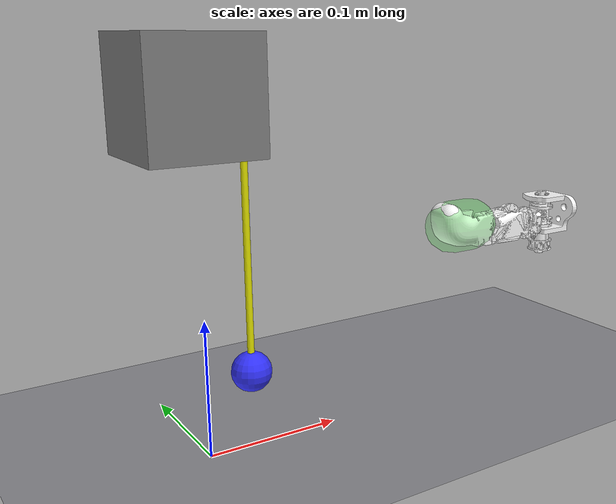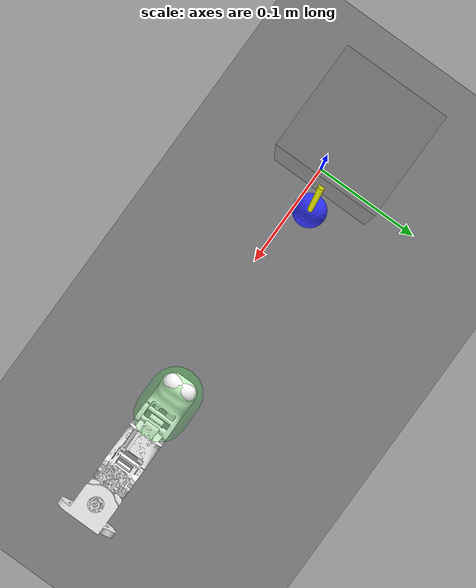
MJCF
<mujoco>
    <option gravity ="0 0 -9.81" timestep="0.001" viscosity="1.8e-5" density="1.204" integrator="implicit">
        <flag contact="enable"/>
    </option>

    <default>
        <geom solref="0.02 1" solimp="0.9 0.95 0.0051" condim="3" friction="0.8 0.005 0.0001"/>
    </default>

    <asset>
    <!--Finger assets-->
    <material name="base_mat"  rgba="1 1 1 1" emission="0.3"/>   <!-- red -->
    <material name="splay_mat" rgba="1 1 1 1" emission="0.3"/>   <!-- blue -->
    <material name="mcp_mat"   rgba="1 1 1 1" emission="0.3"/>   <!-- green -->
    <material name="pip_mat"   rgba="1 1 1 1" emission="0.3"/>
    <mesh name="base_link" content_type="model/stl" file="../meshes/base_link.STL"/>
    <mesh name="splay_link" content_type="model/stl" file="../meshes/splay_link.STL"/>
    <mesh name="mcp_link" content_type="model/stl" file="../meshes/mcp_link.STL"/>
    <mesh name="pip_link" content_type="model/stl" file="../meshes/pip_link.STL"/>
    <!--Ball pendulum asset-->
    <material name="rod_mat" rgba="0.3 0.3 0.3 1" emission="0.3"/>
    <material name="ball_mat" rgba="0.3 0.3 0.3 1" emission="0.3"/>
    </asset>

    <worldbody>
        <light diffuse=".5 .5 .5" pos="0 0 3" dir="0 0 -1" specular="0.3 0.3 0.3" directional="true"/>
        <geom name="floor" type="plane" size="1 1 0.1" rgba="0.533 0.533 0.55 0.5"/>

        <body name="base_link" pos="0.345 0.03 0.15"  euler="0 180 -90">
            <inertial pos="0 0 0" mass="0.1" diaginertia="1e-4 1e-4 1e-4"/>
            <geom type="mesh" material="base_mat" mesh="base_link"/>

            <body name="splay_link" pos="0.01504 0.018 0.016">
                <inertial pos="-3.6026e-05 0.0074618 0.0080911" quat="0.540632 -0.194088 0.25543 0.77769" mass="0.015542" diaginertia="1.41539e-06 1.4041e-06 1.2375e-06"/>
                <joint name="splay_joint" pos="0 0 0" axis="0 0 1" range="-0.35 0.35" damping="5" stiffness="12.5"/>
                <geom type="mesh" material="splay_mat" mesh="splay_link" contype="0" conaffinity="0"/>
                <geom name="splay_geom" type="capsule" size="0.0215 0.0080" pos="0 -0.01 0" euler="0 0 0" rgba="0 1 0 0.0"/>

                <body name="mcp_link" pos="0.00015675 0.029856 0">
                    <inertial pos="-4.0155e-05 0.019564 0.004554" quat="0.51097 0.473652 -0.492558 0.521488" mass="0.022212" diaginertia="3.60499e-06 2.80936e-06 2.37004e-06"/>
                    <joint name="mcp_joint" pos="0 0 0" axis="-1 0 0" range="-1.57 1.57" actuatorfrcrange="-10 10" damping="0.5" stiffness="0"/>
                    <geom type="mesh" material="mcp_mat" mesh="mcp_link" contype="0" conaffinity="0"/>
                    <geom name="mcp_geom" type="capsule" size="0.0215 0.0080" pos="0 0.010 0.005" euler="90 0 0" rgba="0 1 0 0.0"/>

                    <body name="pip_link" pos="0.00022576 0.042999 0">
                        <inertial pos="9.3176e-05 0.02496 5.2699e-05" quat="0.627101 0.32874 -0.334425 0.62196" mass="0.026546" diaginertia="5.11105e-06 4.55235e-06 3.1275e-06"/>
                        <joint name="pip_joint" pos="0 0 0" axis="-1 0 0" range="-1.57 1.57" actuatorfrcrange="-10 10" damping="0.5" stiffness="0"/>
                        <geom type="mesh" material="pip_mat" mesh="pip_link" contype="0" conaffinity="0"/>
                        <geom name="pip_geom" type="capsule" size="0.0215 0.010"
                                pos="0 0.020 0" euler="90 0 0"
                                solref="0.005 1.2"
                                solimp="0.9 0.95 0.001"
                                friction="0.2 0.005 0.0001"
                                rgba="0 1 0 0.1"/>
                    </body>
                </body>
            </body>
        </body>

        <body name="pendulum_support" pos="0 0.014 0.25">
                <!-- Support box (non-colliding) -->
                <geom type="box"
                    size="0.04 0.04 0.04"
                    rgba="0.5 0.5 0.5 1"/>

                <!-- Move hinge BELOW the support box -->
                <body name="pendulum_rod" pos="0.040 0 0">
                    <joint type="hinge"
                        axis="0 1 0"
                        pos="0 0 0"
                        damping="0.00025"/>

                    <!-- 10 cm rod (half-length = 0.1) -->
                    <geom type="cylinder" pos="0 0 -0.1" size="0.0025 0.1"  density="100"  rgba=".9 .9 0 1"/>

                    <!-- Ball at end of rod -->
                    <body pos="0 0 -0.20">
                        <geom name="ball_geom" type="sphere" size="0.015"
                                density="200"
                                fluidshape="ellipsoid"
                                friction="0.2 0.005 0.0001"
                                solref="0.005 1.2"
                                solimp="0.9 0.95 0.001"
                                rgba="0.2 0.2 1 1"/>
                    </body>

                </body>
        </body>

    </worldbody>

    <keyframe>
        <key name="start" qpos="0 0 0 -1.4"/>
    </keyframe>

    <actuator>
        <position name="splay_motor" joint="splay_joint" ctrlrange="-0.35 0.35" kp="10" kv="1.25"/>
        <position name="mcp_motor"   joint="mcp_joint"   ctrlrange="0 1.57" ctrllimited="true" kp="10" kv="1"/>
        <position name="pip_motor"   joint="pip_joint"   ctrlrange="0 1.57" ctrllimited="true" kp="10" kv="1"/>
    </actuator>

</mujoco>
